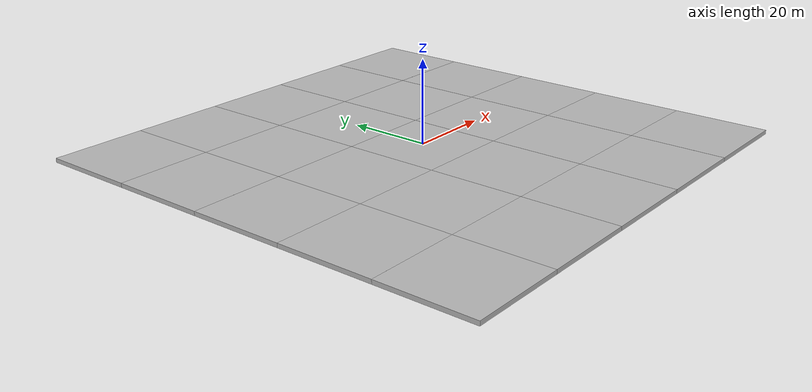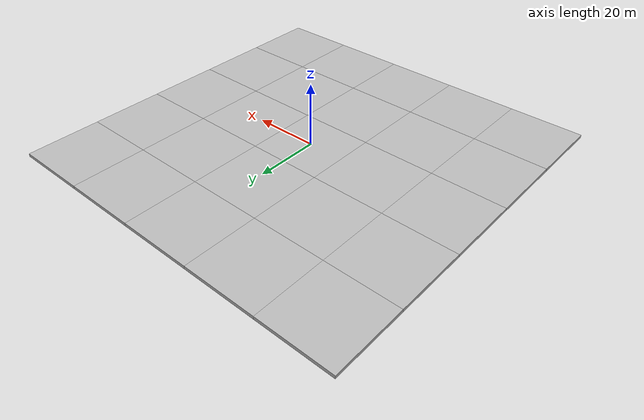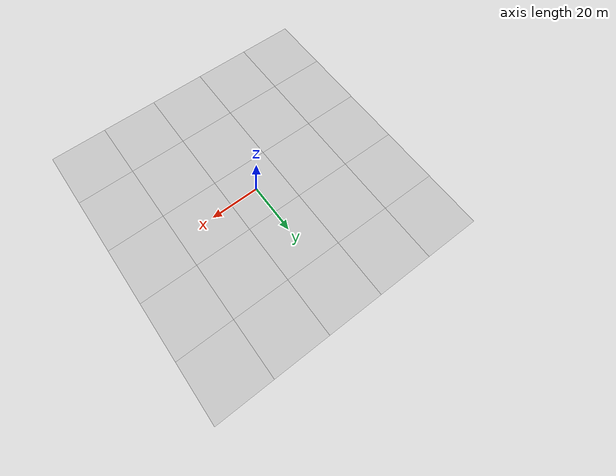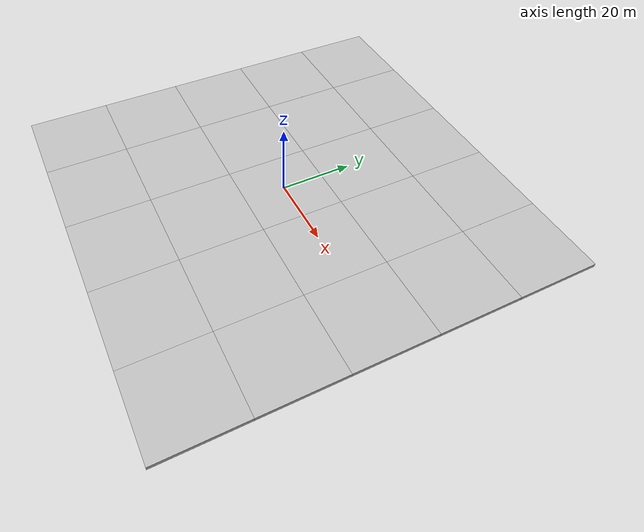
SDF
<sdf version="1.7">
 <world name="default">
  <light name="sun" type="directional">
   <pose>0 0 10 0 -0 0</pose>
   <diffuse>0.8 0.8 0.8 1</diffuse>
   <specular>0.2 0.2 0.2 1</specular>
   <attenuation>
    <range>1000</range>
    <constant>0.9</constant>
    <linear>0.01</linear>
    <quadratic>0.001</quadratic>
   </attenuation>
   <direction>-0.5 0.1 -0.9</direction>
   <spot><inner_angle>0</inner_angle><outer_angle>0</outer_angle><falloff>0</falloff></spot>
  </light>
  <plugin name="map" filename="libStaticMapPlugin.so">
   <center>61.18064481779069 6.862252499306305</center>
   <world_size>100</world_size>
   <map_type>satellite</map_type>
   <api_key>AIzaSyCFzvG1fHlAeK6BJupHC5OzXgZ0wm-zU0I</api_key>
   <use_cache>0</use_cache>
  </plugin>
  <gravity>0 0 -9.8</gravity>
  <magnetic_field>6e-06 2.3e-05 -4.2e-05</magnetic_field>
  <atmosphere type="adiabatic"/>
  <physics type="ode">
   <max_step_size>0.001</max_step_size>
   <real_time_factor>1</real_time_factor>
   <real_time_update_rate>1000</real_time_update_rate>
  </physics>
  <scene><ambient>0.4 0.4 0.4 1</ambient><background>0.7 0.7 0.7 1</background><shadows>1</shadows></scene>
  <spherical_coordinates>
   <surface_model>EARTH_WGS84</surface_model>
   <latitude_deg>0</latitude_deg>
   <longitude_deg>0</longitude_deg>
   <elevation>0</elevation>
   <heading_deg>0</heading_deg>
  </spherical_coordinates>
  <model name="map_satellite_61.1806448_6.8622525_100_100">
   <static>1</static>
   <link name="link">
    <collision name="collision">
     <pose>0 0 -0.5 0 -0 0</pose>
     <geometry><box><size>115.145 115.145 1</size></box></geometry>
    </collision>
    <visual name="visual0_0">
     <pose>-46.0581 46.0581 -0.5 0 -0 1.5708</pose>
     <geometry><box><size>23.029 23.029 1</size></box></geometry>
     <material>
      <script>
       <uri>model://map_satellite_61.1806448_6.8622525_100_100/materials/scripts</uri>
       <uri>model://map_satellite_61.1806448_6.8622525_100_100/materials/textures</uri>
       <name>map_satellite_61.1806448_6.8622525_100_100/0_0</name>
      </script>
     </material>
    </visual>
    <visual name="visual0_1">
     <pose>-23.029 46.0581 -0.5 0 -0 1.5708</pose>
     <geometry><box><size>23.029 23.029 1</size></box></geometry>
     <material>
      <script>
       <uri>model://map_satellite_61.1806448_6.8622525_100_100/materials/scripts</uri>
       <uri>model://map_satellite_61.1806448_6.8622525_100_100/materials/textures</uri>
       <name>map_satellite_61.1806448_6.8622525_100_100/0_1</name>
      </script>
     </material>
    </visual>
    <visual name="visual0_2">
     <pose>0 46.0581 -0.5 0 -0 1.5708</pose>
     <geometry><box><size>23.029 23.029 1</size></box></geometry>
     <material>
      <script>
       <uri>model://map_satellite_61.1806448_6.8622525_100_100/materials/scripts</uri>
       <uri>model://map_satellite_61.1806448_6.8622525_100_100/materials/textures</uri>
       <name>map_satellite_61.1806448_6.8622525_100_100/0_2</name>
      </script>
     </material>
    </visual>
    <visual name="visual0_3">
     <pose>23.029 46.0581 -0.5 0 -0 1.5708</pose>
     <geometry><box><size>23.029 23.029 1</size></box></geometry>
     <material>
      <script>
       <uri>model://map_satellite_61.1806448_6.8622525_100_100/materials/scripts</uri>
       <uri>model://map_satellite_61.1806448_6.8622525_100_100/materials/textures</uri>
       <name>map_satellite_61.1806448_6.8622525_100_100/0_3</name>
      </script>
     </material>
    </visual>
    <visual name="visual0_4">
     <pose>46.0581 46.0581 -0.5 0 -0 1.5708</pose>
     <geometry><box><size>23.029 23.029 1</size></box></geometry>
     <material>
      <script>
       <uri>model://map_satellite_61.1806448_6.8622525_100_100/materials/scripts</uri>
       <uri>model://map_satellite_61.1806448_6.8622525_100_100/materials/textures</uri>
       <name>map_satellite_61.1806448_6.8622525_100_100/0_4</name>
      </script>
     </material>
    </visual>
    <visual name="visual1_0">
     <pose>-46.0581 23.029 -0.5 0 -0 1.5708</pose>
     <geometry><box><size>23.029 23.029 1</size></box></geometry>
     <material>
      <script>
       <uri>model://map_satellite_61.1806448_6.8622525_100_100/materials/scripts</uri>
       <uri>model://map_satellite_61.1806448_6.8622525_100_100/materials/textures</uri>
       <name>map_satellite_61.1806448_6.8622525_100_100/1_0</name>
      </script>
     </material>
    </visual>
    <visual name="visual1_1">
     <pose>-23.029 23.029 -0.5 0 -0 1.5708</pose>
     <geometry><box><size>23.029 23.029 1</size></box></geometry>
     <material>
      <script>
       <uri>model://map_satellite_61.1806448_6.8622525_100_100/materials/scripts</uri>
       <uri>model://map_satellite_61.1806448_6.8622525_100_100/materials/textures</uri>
       <name>map_satellite_61.1806448_6.8622525_100_100/1_1</name>
      </script>
     </material>
    </visual>
    <visual name="visual1_2">
     <pose>0 23.029 -0.5 0 -0 1.5708</pose>
     <geometry><box><size>23.029 23.029 1</size></box></geometry>
     <material>
      <script>
       <uri>model://map_satellite_61.1806448_6.8622525_100_100/materials/scripts</uri>
       <uri>model://map_satellite_61.1806448_6.8622525_100_100/materials/textures</uri>
       <name>map_satellite_61.1806448_6.8622525_100_100/1_2</name>
      </script>
     </material>
    </visual>
    <visual name="visual1_3">
     <pose>23.029 23.029 -0.5 0 -0 1.5708</pose>
     <geometry><box><size>23.029 23.029 1</size></box></geometry>
     <material>
      <script>
       <uri>model://map_satellite_61.1806448_6.8622525_100_100/materials/scripts</uri>
       <uri>model://map_satellite_61.1806448_6.8622525_100_100/materials/textures</uri>
       <name>map_satellite_61.1806448_6.8622525_100_100/1_3</name>
      </script>
     </material>
    </visual>
    <visual name="visual1_4">
     <pose>46.0581 23.029 -0.5 0 -0 1.5708</pose>
     <geometry><box><size>23.029 23.029 1</size></box></geometry>
     <material>
      <script>
       <uri>model://map_satellite_61.1806448_6.8622525_100_100/materials/scripts</uri>
       <uri>model://map_satellite_61.1806448_6.8622525_100_100/materials/textures</uri>
       <name>map_satellite_61.1806448_6.8622525_100_100/1_4</name>
      </script>
     </material>
    </visual>
    <visual name="visual2_0">
     <pose>-46.0581 0 -0.5 0 -0 1.5708</pose>
     <geometry><box><size>23.029 23.029 1</size></box></geometry>
     <material>
      <script>
       <uri>model://map_satellite_61.1806448_6.8622525_100_100/materials/scripts</uri>
       <uri>model://map_satellite_61.1806448_6.8622525_100_100/materials/textures</uri>
       <name>map_satellite_61.1806448_6.8622525_100_100/2_0</name>
      </script>
     </material>
    </visual>
    <visual name="visual2_1">
     <pose>-23.029 0 -0.5 0 -0 1.5708</pose>
     <geometry><box><size>23.029 23.029 1</size></box></geometry>
     <material>
      <script>
       <uri>model://map_satellite_61.1806448_6.8622525_100_100/materials/scripts</uri>
       <uri>model://map_satellite_61.1806448_6.8622525_100_100/materials/textures</uri>
       <name>map_satellite_61.1806448_6.8622525_100_100/2_1</name>
      </script>
     </material>
    </visual>
    <visual name="visual2_2">
     <pose>0 0 -0.5 0 -0 1.5708</pose>
     <geometry><box><size>23.029 23.029 1</size></box></geometry>
     <material>
      <script>
       <uri>model://map_satellite_61.1806448_6.8622525_100_100/materials/scripts</uri>
       <uri>model://map_satellite_61.1806448_6.8622525_100_100/materials/textures</uri>
       <name>map_satellite_61.1806448_6.8622525_100_100/2_2</name>
      </script>
     </material>
    </visual>
    <visual name="visual2_3">
     <pose>23.029 0 -0.5 0 -0 1.5708</pose>
     <geometry><box><size>23.029 23.029 1</size></box></geometry>
     <material>
      <script>
       <uri>model://map_satellite_61.1806448_6.8622525_100_100/materials/scripts</uri>
       <uri>model://map_satellite_61.1806448_6.8622525_100_100/materials/textures</uri>
       <name>map_satellite_61.1806448_6.8622525_100_100/2_3</name>
      </script>
     </material>
    </visual>
    <visual name="visual2_4">
     <pose>46.0581 0 -0.5 0 -0 1.5708</pose>
     <geometry><box><size>23.029 23.029 1</size></box></geometry>
     <material>
      <script>
       <uri>model://map_satellite_61.1806448_6.8622525_100_100/materials/scripts</uri>
       <uri>model://map_satellite_61.1806448_6.8622525_100_100/materials/textures</uri>
       <name>map_satellite_61.1806448_6.8622525_100_100/2_4</name>
      </script>
     </material>
    </visual>
    <visual name="visual3_0">
     <pose>-46.0581 -23.029 -0.5 0 -0 1.5708</pose>
     <geometry><box><size>23.029 23.029 1</size></box></geometry>
     <material>
      <script>
       <uri>model://map_satellite_61.1806448_6.8622525_100_100/materials/scripts</uri>
       <uri>model://map_satellite_61.1806448_6.8622525_100_100/materials/textures</uri>
       <name>map_satellite_61.1806448_6.8622525_100_100/3_0</name>
      </script>
     </material>
    </visual>
    <visual name="visual3_1">
     <pose>-23.029 -23.029 -0.5 0 -0 1.5708</pose>
     <geometry><box><size>23.029 23.029 1</size></box></geometry>
     <material>
      <script>
       <uri>model://map_satellite_61.1806448_6.8622525_100_100/materials/scripts</uri>
       <uri>model://map_satellite_61.1806448_6.8622525_100_100/materials/textures</uri>
       <name>map_satellite_61.1806448_6.8622525_100_100/3_1</name>
      </script>
     </material>
    </visual>
    <visual name="visual3_2">
     <pose>0 -23.029 -0.5 0 -0 1.5708</pose>
     <geometry><box><size>23.029 23.029 1</size></box></geometry>
     <material>
      <script>
       <uri>model://map_satellite_61.1806448_6.8622525_100_100/materials/scripts</uri>
       <uri>model://map_satellite_61.1806448_6.8622525_100_100/materials/textures</uri>
       <name>map_satellite_61.1806448_6.8622525_100_100/3_2</name>
      </script>
     </material>
    </visual>
    <visual name="visual3_3">
     <pose>23.029 -23.029 -0.5 0 -0 1.5708</pose>
     <geometry><box><size>23.029 23.029 1</size></box></geometry>
     <material>
      <script>
       <uri>model://map_satellite_61.1806448_6.8622525_100_100/materials/scripts</uri>
       <uri>model://map_satellite_61.1806448_6.8622525_100_100/materials/textures</uri>
       <name>map_satellite_61.1806448_6.8622525_100_100/3_3</name>
      </script>
     </material>
    </visual>
    <visual name="visual3_4">
     <pose>46.0581 -23.029 -0.5 0 -0 1.5708</pose>
     <geometry><box><size>23.029 23.029 1</size></box></geometry>
     <material>
      <script>
       <uri>model://map_satellite_61.1806448_6.8622525_100_100/materials/scripts</uri>
       <uri>model://map_satellite_61.1806448_6.8622525_100_100/materials/textures</uri>
       <name>map_satellite_61.1806448_6.8622525_100_100/3_4</name>
      </script>
     </material>
    </visual>
    <visual name="visual4_0">
     <pose>-46.0581 -46.0581 -0.5 0 -0 1.5708</pose>
     <geometry><box><size>23.029 23.029 1</size></box></geometry>
     <material>
      <script>
       <uri>model://map_satellite_61.1806448_6.8622525_100_100/materials/scripts</uri>
       <uri>model://map_satellite_61.1806448_6.8622525_100_100/materials/textures</uri>
       <name>map_satellite_61.1806448_6.8622525_100_100/4_0</name>
      </script>
     </material>
    </visual>
    <visual name="visual4_1">
     <pose>-23.029 -46.0581 -0.5 0 -0 1.5708</pose>
     <geometry><box><size>23.029 23.029 1</size></box></geometry>
     <material>
      <script>
       <uri>model://map_satellite_61.1806448_6.8622525_100_100/materials/scripts</uri>
       <uri>model://map_satellite_61.1806448_6.8622525_100_100/materials/textures</uri>
       <name>map_satellite_61.1806448_6.8622525_100_100/4_1</name>
      </script>
     </material>
    </visual>
    <visual name="visual4_2">
     <pose>0 -46.0581 -0.5 0 -0 1.5708</pose>
     <geometry><box><size>23.029 23.029 1</size></box></geometry>
     <material>
      <script>
       <uri>model://map_satellite_61.1806448_6.8622525_100_100/materials/scripts</uri>
       <uri>model://map_satellite_61.1806448_6.8622525_100_100/materials/textures</uri>
       <name>map_satellite_61.1806448_6.8622525_100_100/4_2</name>
      </script>
     </material>
    </visual>
    <visual name="visual4_3">
     <pose>23.029 -46.0581 -0.5 0 -0 1.5708</pose>
     <geometry><box><size>23.029 23.029 1</size></box></geometry>
     <material>
      <script>
       <uri>model://map_satellite_61.1806448_6.8622525_100_100/materials/scripts</uri>
       <uri>model://map_satellite_61.1806448_6.8622525_100_100/materials/textures</uri>
       <name>map_satellite_61.1806448_6.8622525_100_100/4_3</name>
      </script>
     </material>
    </visual>
    <visual name="visual4_4">
     <pose>46.0581 -46.0581 -0.5 0 -0 1.5708</pose>
     <geometry><box><size>23.029 23.029 1</size></box></geometry>
     <material>
      <script>
       <uri>model://map_satellite_61.1806448_6.8622525_100_100/materials/scripts</uri>
       <uri>model://map_satellite_61.1806448_6.8622525_100_100/materials/textures</uri>
       <name>map_satellite_61.1806448_6.8622525_100_100/4_4</name>
      </script>
     </material>
    </visual>
   </link>
   <pose>0 0 0 0 0 -1.57</pose>
  </model>
 </world>
</sdf>
